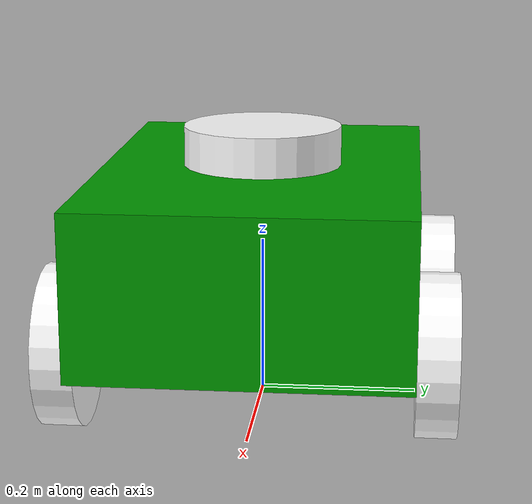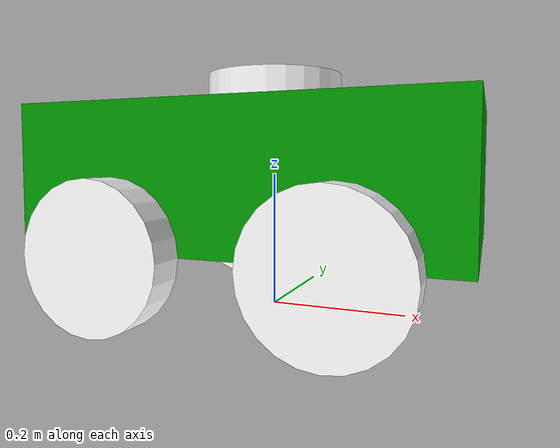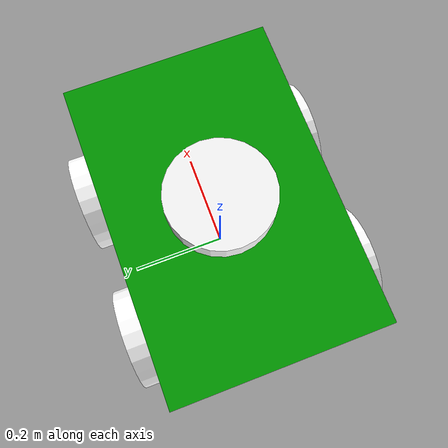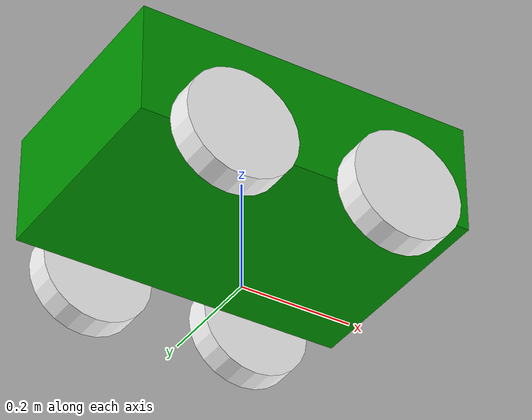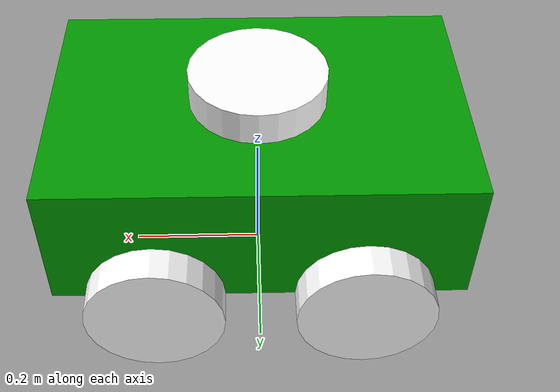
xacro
<?xml version="1.0"?>
<robot name="my_robot" xmlns:xacro="http://ros.org/wiki/xacro">

    <material name="grey">
        <color rgba="0.7 0.7 0.7 1" />
    </material>
    <material name="green">
        <color rgba="0 0.6 0 1" />
    </material>
    <material name="white">
        <color rgba="1 1 1 1" />
    </material>

    <link name="base_footprint" />

    <link name="base_link">
        <visual>
            <geometry>
                <box size="0.6 0.4 0.2" />
            </geometry>
            <origin xyz="0 0 0.1" rpy="0 0 0" />
            <material name="green" />
        </visual>
        <collision>
            <geometry>
                <box size="0.6 0.4 0.2" />
            </geometry>
            <origin xyz="0 0 0.1" rpy="0 0 0" />
        </collision>
        <inertial>
            <origin xyz="0 0 0.1" rpy="0 0 0" />
            <mass value="1.0" />
            <inertia ixx="0.1" ixy="0" ixz="0" iyy="0.1" iyz="0" izz="0.1" />
        </inertial>
    </link>

    <link name="lidar">
        <visual>
            <geometry>
                <cylinder radius="0.1" length="0.05" />
            </geometry>
            <origin xyz="0 0 0" rpy="0 0 0" />
            <material name="white" />
        </visual>
        <collision>
            <geometry>
                <cylinder radius="0.1" length="0.05" />
            </geometry>
            <origin xyz="0 0 0" rpy="0 0 0" />
        </collision>
        <inertial>
            <origin xyz="0 0 0" rpy="0 0 0" />
            <mass value="0.01" />
            <inertia ixx="0.0001" ixy="0" ixz="0" iyy="0.0001" iyz="0" izz="0.0001" />
        </inertial>
    </link>

    <link name="left_back_wheel">
        <visual>
            <geometry>
                <cylinder radius="0.1" length="0.05" />
            </geometry>
            <origin xyz="0 0 0" rpy="1.57 0 0" />
            <material name="white" />
        </visual>
        <collision>
            <geometry>
                <cylinder radius="0.1" length="0.05" />
            </geometry>
            <origin xyz="0 0 0" rpy="1.57 0 0" />
        </collision>
        <inertial>
            <origin xyz="0 0 0" rpy="1.57 0 0" />
            <mass value="0.5" />
            <inertia ixx="0.05" ixy="0" ixz="0" iyy="0.05" iyz="0" izz="0.05" />
        </inertial>
    </link>

    <link name="right_back_wheel">
        <visual>
            <geometry>
                <cylinder radius="0.1" length="0.05" />
            </geometry>
            <origin xyz="0 0 0" rpy="1.57 0 0" />
            <material name="white" />
        </visual>
        <collision>
            <geometry>
                <cylinder radius="0.1" length="0.05" />
            </geometry>
            <origin xyz="0 0 0" rpy="1.57 0 0" />
        </collision>
        <inertial>
            <origin xyz="0 0 0" rpy="1.57 0 0" />
            <mass value="0.5" />
            <inertia ixx="0.05" ixy="0" ixz="0" iyy="0.05" iyz="0" izz="0.05" />
        </inertial>
    </link>

    <link name="left_front_wheel">
        <visual>
            <geometry>
                <cylinder radius="0.1" length="0.05" />
            </geometry>
            <origin xyz="0 0 0" rpy="1.57 0 0" />
            <material name="white" />
        </visual>
        <collision>
            <geometry>
                <cylinder radius="0.1" length="0.05" />
            </geometry>
            <origin xyz="0 0 0" rpy="1.57 0 0" />
        </collision>
        <inertial>
            <origin xyz="0 0 0" rpy="1.57 0 0" />
            <mass value="0.5" />
            <inertia ixx="0.05" ixy="0" ixz="0" iyy="0.05" iyz="0" izz="0.05" />
        </inertial>
    </link>

    <link name="right_front_wheel">
        <visual>
            <geometry>
                <cylinder radius="0.1" length="0.05" />
            </geometry>
            <origin xyz="0 0 0" rpy="1.57 0 0" />
            <material name="white" />
        </visual>
        <collision>
            <geometry>
                <cylinder radius="0.1" length="0.05" />
            </geometry>
            <origin xyz="0 0 0" rpy="1.57 0 0" />
        </collision>
        <inertial>
            <origin xyz="0 0 0" rpy="1.57 0 0" />
            <mass value="0.5" />
            <inertia ixx="0.05" ixy="0" ixz="0" iyy="0.05" iyz="0" izz="0.05" />
        </inertial>
    </link>

    <joint name="base_joint" type="fixed">
        <parent link="base_footprint" />
        <child link="base_link" />
        <origin xyz="0 0 0.1" rpy="0 0 0" />
    </joint>

    <joint name="base_lidar_joint" type="fixed">
        <parent link="base_link" />
        <child link="lidar" />
        <origin xyz="0 0 0.225" rpy="0 0 0" />
    </joint>

    <joint name="base_left_wheel_joint" type="continuous">
        <parent link="base_link" />
        <child link="left_back_wheel" />
        <origin xyz="-0.15 0.225 0" rpy="0 0 0" />
        <axis xyz="0 1 0" />
    </joint>

    <joint name="base_left_front_joint" type="continuous">
        <parent link="base_link" />
        <child link="left_front_wheel" />
        <origin xyz="0.15 0.225 0" rpy="0 0 0" />
        <axis xyz="0 1 0" />
    </joint>

    <joint name="base_right_front_joint" type="continuous">
        <parent link="base_link" />
        <child link="right_front_wheel" />
        <origin xyz="0.15 -0.225 0" rpy="0 0 0" />
        <axis xyz="0 1 0" />
    </joint>

    <joint name="base_right_back_joint" type="continuous">
        <parent link="base_link" />
        <child link="right_back_wheel" />
        <origin xyz="-0.15 -0.225 0" rpy="0 0 0" />
        <axis xyz="0 1 0" />
    </joint>

    <!-- Gazebo specific properties for base_link -->
    <gazebo reference="base_link">
        <material>Gazebo/Green</material> <!-- Adjust material as needed -->
        <mu1>100</mu1>
        <mu2>100</mu2>
        <kp>1000000.0</kp>
        <kd>1000.0</kd>
        <static>false</static>
    </gazebo>

    <!-- Gazebo specific properties for lidar -->
    <gazebo reference="lidar">
        <material>Gazebo/White</material> <!-- Adjust material as needed -->
        <mu1>100</mu1>
        <mu2>100</mu2>
        <kp>1000000.0</kp>
        <kd>1000.0</kd>
        <static>false</static>
    </gazebo>

    <!-- Gazebo specific properties for left_back_wheel -->
    <gazebo reference="left_back_wheel">
        <material>Gazebo/White</material> <!-- Adjust material as needed -->
        <mu1>100</mu1>
        <mu2>100</mu2>
        <kp>1000000.0</kp>
        <kd>1000.0</kd>
        <static>false</static>
    </gazebo>

    <!-- Gazebo specific properties for right_back_wheel -->
    <gazebo reference="right_back_wheel">
        <material>Gazebo/White</material> <!-- Adjust material as needed -->
        <mu1>100</mu1>
        <mu2>100</mu2>
        <kp>1000000.0</kp>
        <kd>1000.0</kd>
        <static>false</static>
    </gazebo>

    <gazebo reference="left_front_wheel">
        <material>Gazebo/White</material> <!-- Adjust material as needed -->
        <mu1>100</mu1>
        <mu2>100</mu2>
        <kp>1000000.0</kp>
        <kd>1000.0</kd>
        <static>false</static>
    </gazebo>

    <!-- Gazebo specific properties for right_front_wheel -->
    <gazebo reference="right_front_wheel">
        <material>Gazebo/White</material> <!-- Adjust material as needed -->
        <mu1>100</mu1>
        <mu2>100</mu2>
        <kp>1000000.0</kp>
        <kd>1000.0</kd>
        <static>false</static>
    </gazebo>

    <gazebo>
        <plugin name="diff_drive_controller" filename="libgazebo_ros_diff_drive.so">
          <updateRate>100.0</updateRate>
          <robotNamespace>/</robotNamespace>
          <num_wheel_pairs>2</num_wheel_pairs>
          <left_joint>base_left_front_joint</left_joint>
          <left_joint>base_left_wheel_joint</left_joint>
          <right_joint>base_right_front_joint</right_joint>
          <right_joint>base_right_back_joint</right_joint>
          <wheel_separation>0.6</wheel_separation>
          <wheel_separation>0.6</wheel_separation>
          <wheel_diameter>0.2</wheel_diameter>
          <wheel_diameter>0.2</wheel_diameter>
          <robotBaseFrame>base_link</robotBaseFrame>
          <torque>20</torque>
          <topicName>cmd_vel</topicName>
          <broadcastTF>false</broadcastTF>
        </plugin>
    </gazebo>

</robot>
